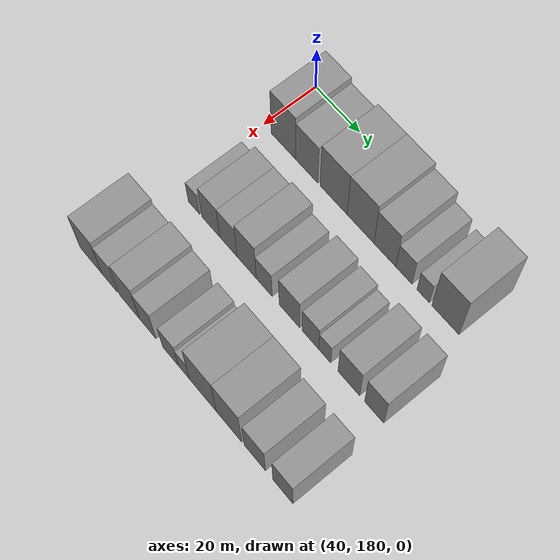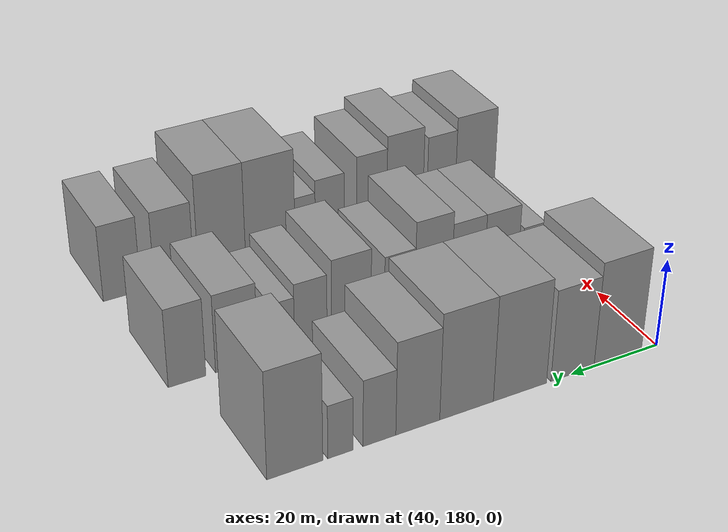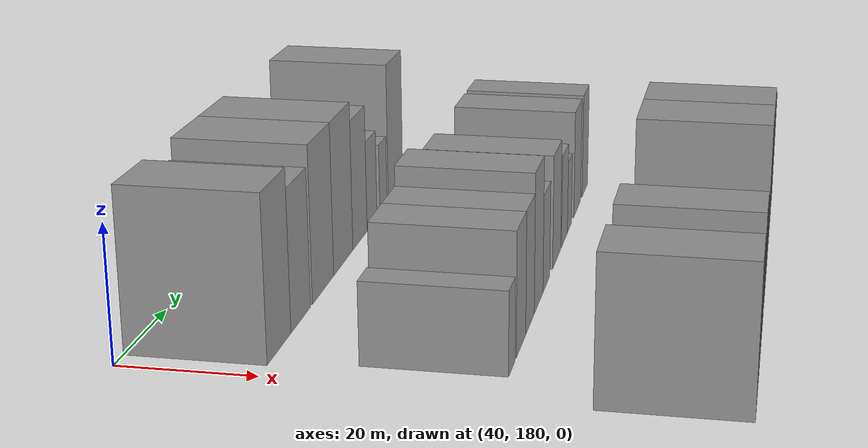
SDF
<sdf version="1.6">
 <world name="default">
  <model name="building_61">
   <static>1</static>
   <pose>50.0000 189.2256 0 0.000000 0.000000 0.000000</pose>
   <link name="link">
    <pose>0 0 12.00 0 0 0</pose>
    <collision name="collision"><geometry><box><size>20.0000 11.1491 24.0000</size></box></geometry></collision>
    <visual name="visual">
     <cast_shadows>0</cast_shadows>
     <geometry><box><size>20.0000 11.1491 24.0000</size></box></geometry>
     <material>
      <script>
       <uri>model://grey_wall/materials/scripts</uri>
       <uri>model://grey_wall/materials/textures</uri>
       <name>vrc/grey_wall</name>
      </script>
     </material>
    </visual>
   </link>
  </model>
  <model name="building_62">
   <static>1</static>
   <pose>50.0000 199.7369 0 0.000000 0.000000 0.000000</pose>
   <link name="link">
    <pose>0 0 10.50 0 0 0</pose>
    <collision name="collision"><geometry><box><size>20.0000 9.8735 21.0000</size></box></geometry></collision>
    <visual name="visual">
     <cast_shadows>0</cast_shadows>
     <geometry><box><size>20.0000 9.8735 21.0000</size></box></geometry>
     <material>
      <script>
       <uri>model://grey_wall/materials/scripts</uri>
       <uri>model://grey_wall/materials/textures</uri>
       <name>vrc/grey_wall</name>
      </script>
     </material>
    </visual>
   </link>
  </model>
  <model name="building_63">
   <static>1</static>
   <pose>50.0000 211.5797 0 0.000000 0.000000 0.000000</pose>
   <link name="link">
    <pose>0 0 12.00 0 0 0</pose>
    <collision name="collision"><geometry><box><size>20.0000 11.8122 24.0000</size></box></geometry></collision>
    <visual name="visual">
     <cast_shadows>0</cast_shadows>
     <geometry><box><size>20.0000 11.8122 24.0000</size></box></geometry>
     <material>
      <script>
       <uri>model://grey_wall/materials/scripts</uri>
       <uri>model://grey_wall/materials/textures</uri>
       <name>vrc/grey_wall</name>
      </script>
     </material>
    </visual>
   </link>
  </model>
  <model name="building_64">
   <static>1</static>
   <pose>50.0000 223.2693 0 0.000000 0.000000 0.000000</pose>
   <link name="link">
    <pose>0 0 12.00 0 0 0</pose>
    <collision name="collision"><geometry><box><size>20.0000 11.5669 24.0000</size></box></geometry></collision>
    <visual name="visual">
     <cast_shadows>0</cast_shadows>
     <geometry><box><size>20.0000 11.5669 24.0000</size></box></geometry>
     <material>
      <script>
       <uri>model://grey_wall/materials/scripts</uri>
       <uri>model://grey_wall/materials/textures</uri>
       <name>vrc/grey_wall</name>
      </script>
     </material>
    </visual>
   </link>
  </model>
  <model name="building_65">
   <static>1</static>
   <pose>50.0000 233.6656 0 0.000000 0.000000 0.000000</pose>
   <link name="link">
    <pose>0 0 10.50 0 0 0</pose>
    <collision name="collision"><geometry><box><size>20.0000 9.2259 21.0000</size></box></geometry></collision>
    <visual name="visual">
     <cast_shadows>0</cast_shadows>
     <geometry><box><size>20.0000 9.2259 21.0000</size></box></geometry>
     <material>
      <script>
       <uri>model://grey_wall/materials/scripts</uri>
       <uri>model://grey_wall/materials/textures</uri>
       <name>vrc/grey_wall</name>
      </script>
     </material>
    </visual>
   </link>
  </model>
  <model name="building_66">
   <static>1</static>
   <pose>50.0000 241.6552 0 0.000000 0.000000 0.000000</pose>
   <link name="link">
    <pose>0 0 7.50 0 0 0</pose>
    <collision name="collision"><geometry><box><size>20.0000 6.7533 15.0000</size></box></geometry></collision>
    <visual name="visual">
     <cast_shadows>0</cast_shadows>
     <geometry><box><size>20.0000 6.7533 15.0000</size></box></geometry>
     <material>
      <script>
       <uri>model://grey_wall/materials/scripts</uri>
       <uri>model://grey_wall/materials/textures</uri>
       <name>vrc/grey_wall</name>
      </script>
     </material>
    </visual>
   </link>
  </model>
  <model name="building_67">
   <static>1</static>
   <pose>50.0000 249.5808 0 0.000000 0.000000 0.000000</pose>
   <link name="link">
    <pose>0 0 6.00 0 0 0</pose>
    <collision name="collision"><geometry><box><size>20.0000 5.0978 12.0000</size></box></geometry></collision>
    <visual name="visual">
     <cast_shadows>0</cast_shadows>
     <geometry><box><size>20.0000 5.0978 12.0000</size></box></geometry>
     <material>
      <script>
       <uri>model://grey_wall/materials/scripts</uri>
       <uri>model://grey_wall/materials/textures</uri>
       <name>vrc/grey_wall</name>
      </script>
     </material>
    </visual>
   </link>
  </model>
  <model name="building_68">
   <static>1</static>
   <pose>50.0000 258.6403 0 0.000000 0.000000 0.000000</pose>
   <link name="link">
    <pose>0 0 12.00 0 0 0</pose>
    <collision name="collision"><geometry><box><size>20.0000 11.0211 24.0000</size></box></geometry></collision>
    <visual name="visual">
     <cast_shadows>0</cast_shadows>
     <geometry><box><size>20.0000 11.0211 24.0000</size></box></geometry>
     <material>
      <script>
       <uri>model://grey_wall/materials/scripts</uri>
       <uri>model://grey_wall/materials/textures</uri>
       <name>vrc/grey_wall</name>
      </script>
     </material>
    </visual>
   </link>
  </model>
  <model name="building_134">
   <static>1</static>
   <pose>82.0000 188.2013 0 0.000000 0.000000 0.000000</pose>
   <link name="link">
    <pose>0 0 6.00 0 0 0</pose>
    <collision name="collision"><geometry><box><size>20.0000 5.1934 12.0000</size></box></geometry></collision>
    <visual name="visual">
     <cast_shadows>0</cast_shadows>
     <geometry><box><size>20.0000 5.1934 12.0000</size></box></geometry>
     <material>
      <script>
       <uri>model://grey_wall/materials/scripts</uri>
       <uri>model://grey_wall/materials/textures</uri>
       <name>vrc/grey_wall</name>
      </script>
     </material>
    </visual>
   </link>
  </model>
  <model name="building_135">
   <static>1</static>
   <pose>82.0000 195.8727 0 0.000000 0.000000 0.000000</pose>
   <link name="link">
    <pose>0 0 9.00 0 0 0</pose>
    <collision name="collision"><geometry><box><size>20.0000 8.1493 18.0000</size></box></geometry></collision>
    <visual name="visual">
     <cast_shadows>0</cast_shadows>
     <geometry><box><size>20.0000 8.1493 18.0000</size></box></geometry>
     <material>
      <script>
       <uri>model://grey_wall/materials/scripts</uri>
       <uri>model://grey_wall/materials/textures</uri>
       <name>vrc/grey_wall</name>
      </script>
     </material>
    </visual>
   </link>
  </model>
  <model name="building_136">
   <static>1</static>
   <pose>82.0000 203.8156 0 0.000000 0.000000 0.000000</pose>
   <link name="link">
    <pose>0 0 9.00 0 0 0</pose>
    <collision name="collision"><geometry><box><size>20.0000 7.7365 18.0000</size></box></geometry></collision>
    <visual name="visual">
     <cast_shadows>0</cast_shadows>
     <geometry><box><size>20.0000 7.7365 18.0000</size></box></geometry>
     <material>
      <script>
       <uri>model://grey_wall/materials/scripts</uri>
       <uri>model://grey_wall/materials/textures</uri>
       <name>vrc/grey_wall</name>
      </script>
     </material>
    </visual>
   </link>
  </model>
  <model name="building_137">
   <static>1</static>
   <pose>82.0000 211.9540 0 0.000000 0.000000 0.000000</pose>
   <link name="link">
    <pose>0 0 10.50 0 0 0</pose>
    <collision name="collision"><geometry><box><size>20.0000 8.5403 21.0000</size></box></geometry></collision>
    <visual name="visual">
     <cast_shadows>0</cast_shadows>
     <geometry><box><size>20.0000 8.5403 21.0000</size></box></geometry>
     <material>
      <script>
       <uri>model://grey_wall/materials/scripts</uri>
       <uri>model://grey_wall/materials/textures</uri>
       <name>vrc/grey_wall</name>
      </script>
     </material>
    </visual>
   </link>
  </model>
  <model name="building_138">
   <static>1</static>
   <pose>82.0000 219.7043 0 0.000000 0.000000 0.000000</pose>
   <link name="link">
    <pose>0 0 7.50 0 0 0</pose>
    <collision name="collision"><geometry><box><size>20.0000 6.9603 15.0000</size></box></geometry></collision>
    <visual name="visual">
     <cast_shadows>0</cast_shadows>
     <geometry><box><size>20.0000 6.9603 15.0000</size></box></geometry>
     <material>
      <script>
       <uri>model://grey_wall/materials/scripts</uri>
       <uri>model://grey_wall/materials/textures</uri>
       <name>vrc/grey_wall</name>
      </script>
     </material>
    </visual>
   </link>
  </model>
  <model name="building_139">
   <static>1</static>
   <pose>82.0000 230.5792 0 0.000000 0.000000 0.000000</pose>
   <link name="link">
    <pose>0 0 9.00 0 0 0</pose>
    <collision name="collision"><geometry><box><size>20.0000 8.7895 18.0000</size></box></geometry></collision>
    <visual name="visual">
     <cast_shadows>0</cast_shadows>
     <geometry><box><size>20.0000 8.7895 18.0000</size></box></geometry>
     <material>
      <script>
       <uri>model://grey_wall/materials/scripts</uri>
       <uri>model://grey_wall/materials/textures</uri>
       <name>vrc/grey_wall</name>
      </script>
     </material>
    </visual>
   </link>
  </model>
  <model name="building_140">
   <static>1</static>
   <pose>82.0000 239.5101 0 0.000000 0.000000 0.000000</pose>
   <link name="link">
    <pose>0 0 7.50 0 0 0</pose>
    <collision name="collision"><geometry><box><size>20.0000 7.0722 15.0000</size></box></geometry></collision>
    <visual name="visual">
     <cast_shadows>0</cast_shadows>
     <geometry><box><size>20.0000 7.0722 15.0000</size></box></geometry>
     <material>
      <script>
       <uri>model://grey_wall/materials/scripts</uri>
       <uri>model://grey_wall/materials/textures</uri>
       <name>vrc/grey_wall</name>
      </script>
     </material>
    </visual>
   </link>
  </model>
  <model name="building_141">
   <static>1</static>
   <pose>82.0000 245.5180 0 0.000000 0.000000 0.000000</pose>
   <link name="link">
    <pose>0 0 6.00 0 0 0</pose>
    <collision name="collision"><geometry><box><size>20.0000 4.9435 12.0000</size></box></geometry></collision>
    <visual name="visual">
     <cast_shadows>0</cast_shadows>
     <geometry><box><size>20.0000 4.9435 12.0000</size></box></geometry>
     <material>
      <script>
       <uri>model://grey_wall/materials/scripts</uri>
       <uri>model://grey_wall/materials/textures</uri>
       <name>vrc/grey_wall</name>
      </script>
     </material>
    </visual>
   </link>
  </model>
  <model name="building_142">
   <static>1</static>
   <pose>82.0000 255.4361 0 0.000000 0.000000 0.000000</pose>
   <link name="link">
    <pose>0 0 9.00 0 0 0</pose>
    <collision name="collision"><geometry><box><size>20.0000 8.8928 18.0000</size></box></geometry></collision>
    <visual name="visual">
     <cast_shadows>0</cast_shadows>
     <geometry><box><size>20.0000 8.8928 18.0000</size></box></geometry>
     <material>
      <script>
       <uri>model://grey_wall/materials/scripts</uri>
       <uri>model://grey_wall/materials/textures</uri>
       <name>vrc/grey_wall</name>
      </script>
     </material>
    </visual>
   </link>
  </model>
  <model name="building_143">
   <static>1</static>
   <pose>82.0000 265.7482 0 0.000000 0.000000 0.000000</pose>
   <link name="link">
    <pose>0 0 9.00 0 0 0</pose>
    <collision name="collision"><geometry><box><size>20.0000 7.7314 18.0000</size></box></geometry></collision>
    <visual name="visual">
     <cast_shadows>0</cast_shadows>
     <geometry><box><size>20.0000 7.7314 18.0000</size></box></geometry>
     <material>
      <script>
       <uri>model://grey_wall/materials/scripts</uri>
       <uri>model://grey_wall/materials/textures</uri>
       <name>vrc/grey_wall</name>
      </script>
     </material>
    </visual>
   </link>
  </model>
  <model name="building_204">
   <static>1</static>
   <pose>114.0000 182.6649 0 0.000000 0.000000 0.000000</pose>
   <link name="link">
    <pose>0 0 10.50 0 0 0</pose>
    <collision name="collision"><geometry><box><size>20.0000 10.2209 21.0000</size></box></geometry></collision>
    <visual name="visual">
     <cast_shadows>0</cast_shadows>
     <geometry><box><size>20.0000 10.2209 21.0000</size></box></geometry>
     <material>
      <script>
       <uri>model://grey_wall/materials/scripts</uri>
       <uri>model://grey_wall/materials/textures</uri>
       <name>vrc/grey_wall</name>
      </script>
     </material>
    </visual>
   </link>
  </model>
  <model name="building_205">
   <static>1</static>
   <pose>114.0000 191.3980 0 0.000000 0.000000 0.000000</pose>
   <link name="link">
    <pose>0 0 9.00 0 0 0</pose>
    <collision name="collision"><geometry><box><size>20.0000 7.2454 18.0000</size></box></geometry></collision>
    <visual name="visual">
     <cast_shadows>0</cast_shadows>
     <geometry><box><size>20.0000 7.2454 18.0000</size></box></geometry>
     <material>
      <script>
       <uri>model://grey_wall/materials/scripts</uri>
       <uri>model://grey_wall/materials/textures</uri>
       <name>vrc/grey_wall</name>
      </script>
     </material>
    </visual>
   </link>
  </model>
  <model name="building_206">
   <static>1</static>
   <pose>114.0000 200.5641 0 0.000000 0.000000 0.000000</pose>
   <link name="link">
    <pose>0 0 10.50 0 0 0</pose>
    <collision name="collision"><geometry><box><size>20.0000 9.0868 21.0000</size></box></geometry></collision>
    <visual name="visual">
     <cast_shadows>0</cast_shadows>
     <geometry><box><size>20.0000 9.0868 21.0000</size></box></geometry>
     <material>
      <script>
       <uri>model://grey_wall/materials/scripts</uri>
       <uri>model://grey_wall/materials/textures</uri>
       <name>vrc/grey_wall</name>
      </script>
     </material>
    </visual>
   </link>
  </model>
  <model name="building_207">
   <static>1</static>
   <pose>114.0000 208.8223 0 0.000000 0.000000 0.000000</pose>
   <link name="link">
    <pose>0 0 9.00 0 0 0</pose>
    <collision name="collision"><geometry><box><size>20.0000 7.4295 18.0000</size></box></geometry></collision>
    <visual name="visual">
     <cast_shadows>0</cast_shadows>
     <geometry><box><size>20.0000 7.4295 18.0000</size></box></geometry>
     <material>
      <script>
       <uri>model://grey_wall/materials/scripts</uri>
       <uri>model://grey_wall/materials/textures</uri>
       <name>vrc/grey_wall</name>
      </script>
     </material>
    </visual>
   </link>
  </model>
  <model name="building_208">
   <static>1</static>
   <pose>114.0000 219.0113 0 0.000000 0.000000 0.000000</pose>
   <link name="link">
    <pose>0 0 7.50 0 0 0</pose>
    <collision name="collision"><geometry><box><size>20.0000 6.9484 15.0000</size></box></geometry></collision>
    <visual name="visual">
     <cast_shadows>0</cast_shadows>
     <geometry><box><size>20.0000 6.9484 15.0000</size></box></geometry>
     <material>
      <script>
       <uri>model://grey_wall/materials/scripts</uri>
       <uri>model://grey_wall/materials/textures</uri>
       <name>vrc/grey_wall</name>
      </script>
     </material>
    </visual>
   </link>
  </model>
  <model name="building_209">
   <static>1</static>
   <pose>114.0000 224.9043 0 0.000000 0.000000 0.000000</pose>
   <link name="link">
    <pose>0 0 6.00 0 0 0</pose>
    <collision name="collision"><geometry><box><size>20.0000 4.8376 12.0000</size></box></geometry></collision>
    <visual name="visual">
     <cast_shadows>0</cast_shadows>
     <geometry><box><size>20.0000 4.8376 12.0000</size></box></geometry>
     <material>
      <script>
       <uri>model://grey_wall/materials/scripts</uri>
       <uri>model://grey_wall/materials/textures</uri>
       <name>vrc/grey_wall</name>
      </script>
     </material>
    </visual>
   </link>
  </model>
  <model name="building_210">
   <static>1</static>
   <pose>114.0000 233.1242 0 0.000000 0.000000 0.000000</pose>
   <link name="link">
    <pose>0 0 12.00 0 0 0</pose>
    <collision name="collision"><geometry><box><size>20.0000 11.6021 24.0000</size></box></geometry></collision>
    <visual name="visual">
     <cast_shadows>0</cast_shadows>
     <geometry><box><size>20.0000 11.6021 24.0000</size></box></geometry>
     <material>
      <script>
       <uri>model://grey_wall/materials/scripts</uri>
       <uri>model://grey_wall/materials/textures</uri>
       <name>vrc/grey_wall</name>
      </script>
     </material>
    </visual>
   </link>
  </model>
  <model name="building_211">
   <static>1</static>
   <pose>114.0000 244.3240 0 0.000000 0.000000 0.000000</pose>
   <link name="link">
    <pose>0 0 12.00 0 0 0</pose>
    <collision name="collision"><geometry><box><size>20.0000 10.7975 24.0000</size></box></geometry></collision>
    <visual name="visual">
     <cast_shadows>0</cast_shadows>
     <geometry><box><size>20.0000 10.7975 24.0000</size></box></geometry>
     <material>
      <script>
       <uri>model://grey_wall/materials/scripts</uri>
       <uri>model://grey_wall/materials/textures</uri>
       <name>vrc/grey_wall</name>
      </script>
     </material>
    </visual>
   </link>
  </model>
  <model name="building_212">
   <static>1</static>
   <pose>114.0000 255.1207 0 0.000000 0.000000 0.000000</pose>
   <link name="link">
    <pose>0 0 9.00 0 0 0</pose>
    <collision name="collision"><geometry><box><size>20.0000 8.7959 18.0000</size></box></geometry></collision>
    <visual name="visual">
     <cast_shadows>0</cast_shadows>
     <geometry><box><size>20.0000 8.7959 18.0000</size></box></geometry>
     <material>
      <script>
       <uri>model://grey_wall/materials/scripts</uri>
       <uri>model://grey_wall/materials/textures</uri>
       <name>vrc/grey_wall</name>
      </script>
     </material>
    </visual>
   </link>
  </model>
  <model name="building_213">
   <static>1</static>
   <pose>114.0000 266.5948 0 0.000000 0.000000 0.000000</pose>
   <link name="link">
    <pose>0 0 9.00 0 0 0</pose>
    <collision name="collision"><geometry><box><size>20.0000 8.1523 18.0000</size></box></geometry></collision>
    <visual name="visual">
     <cast_shadows>0</cast_shadows>
     <geometry><box><size>20.0000 8.1523 18.0000</size></box></geometry>
     <material>
      <script>
       <uri>model://grey_wall/materials/scripts</uri>
       <uri>model://grey_wall/materials/textures</uri>
       <name>vrc/grey_wall</name>
      </script>
     </material>
    </visual>
   </link>
  </model>
 </world>
</sdf>
